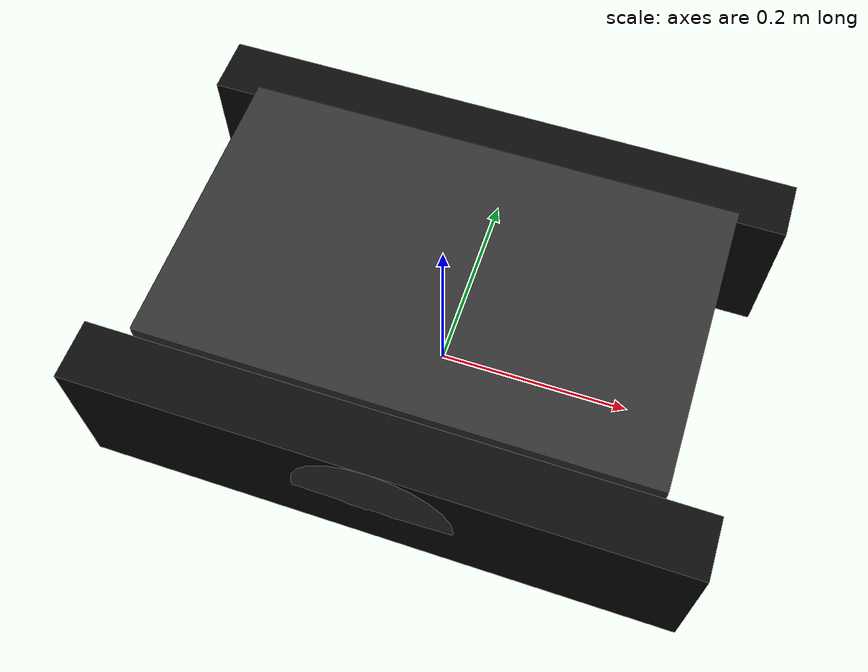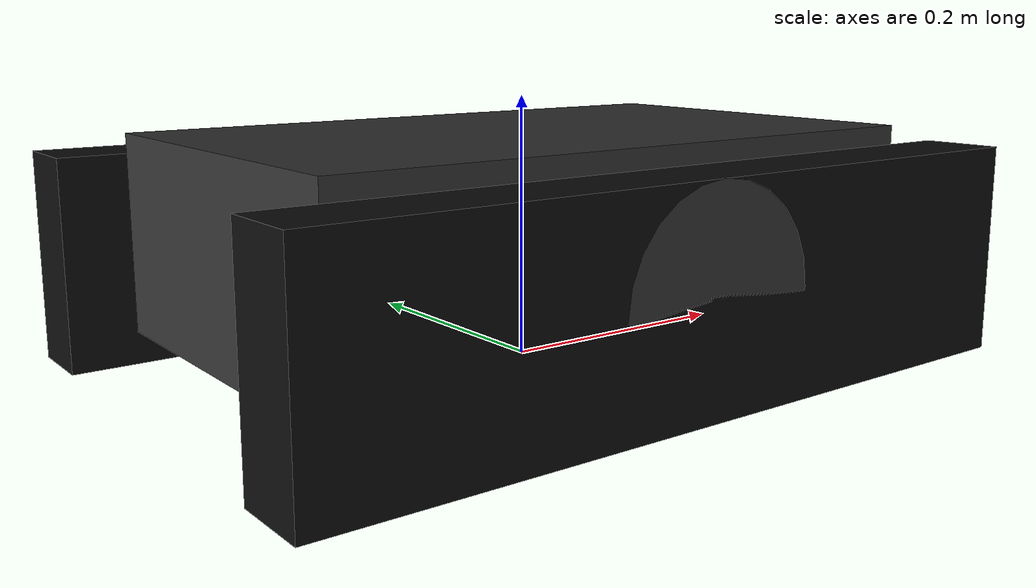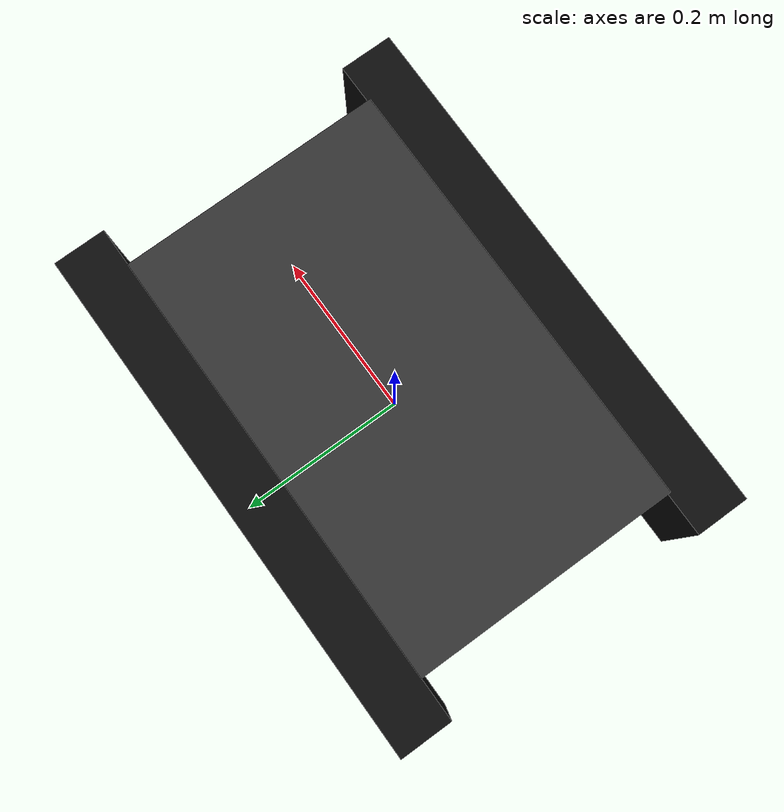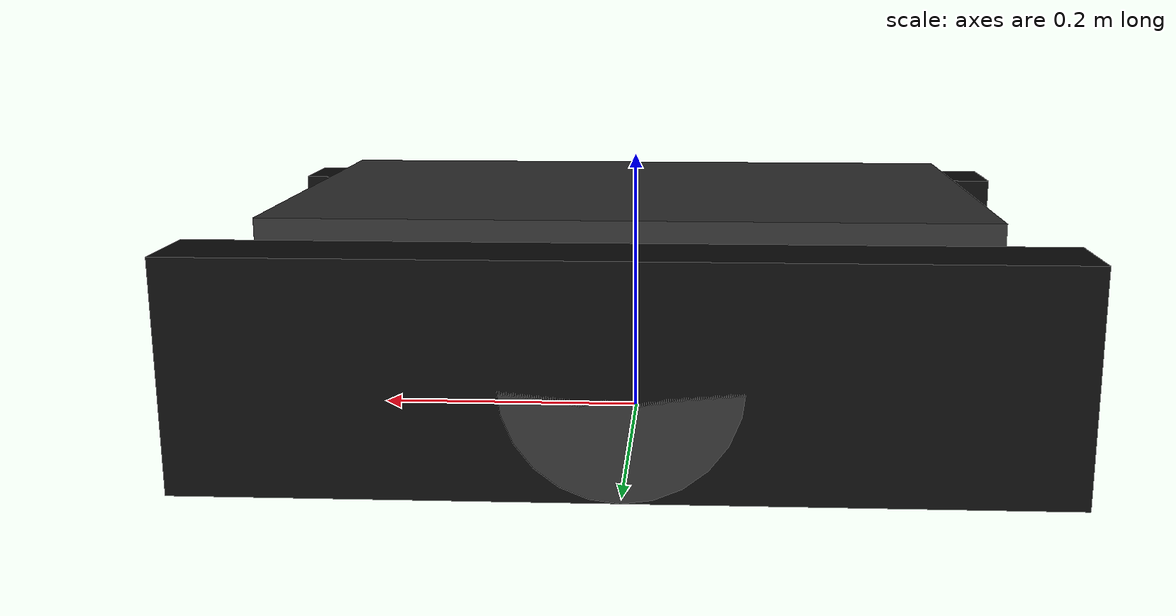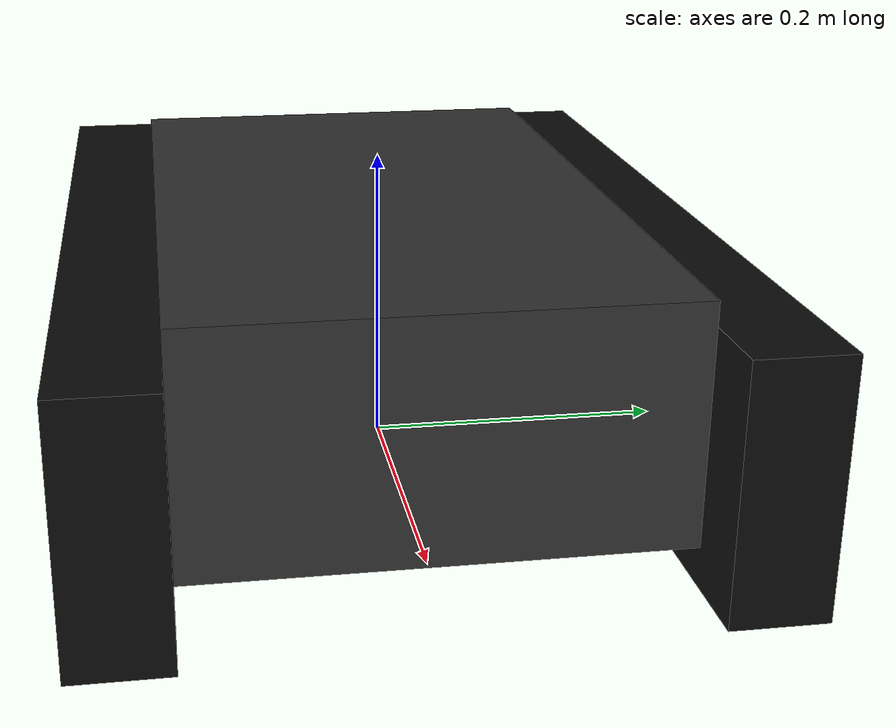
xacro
<?xml version="1.0"?>

<robot xmlns:xacro="[http://www.ros.org/wiki/xacro](http://www.ros.org/wiki/xacro)" name="lyrical_tracked_robot">

<!-- Materials -->

<material name="chassis_color">

<color rgba="0.2 0.2 0.2 1.0"/>

</material>

<material name="track_color">

<color rgba="0.05 0.05 0.05 1.0"/>

</material>

<!-- Dummy Base Link to prevent KDL errors -->

<link name="base_footprint"/>

<!-- Chassis Link -->

<link name="base_link">

<visual>

<origin xyz="0 0 0.1" rpy="0 0 0"/>

<geometry>

<!-- Standard box representation of the track chassis -->

<box size="0.5 0.3 0.15"/>

</geometry>

<material name="chassis_color"/>

</visual>

<collision>

<origin xyz="0 0 0.1" rpy="0 0 0"/>

<geometry>

<box size="0.5 0.3 0.15"/>

</geometry>

</collision>

<inertial>

<mass value="15.0"/>

<origin xyz="0 0 0.1" rpy="0 0 0"/>

<inertia ixx="0.14" ixy="0.0" ixz="0.0" iyy="0.34" iyz="0.0" izz="0.42"/>

</inertial>

</link>

<joint name="base_footprint_joint" type="fixed">

<parent link="base_footprint"/>

<child link="base_link"/>

<origin xyz="0 0 0" rpy="0 0 0"/>

</joint>

<!-- Track Macro for Left and Right Assembly -->

<!-- Note: ROS 2 Lyrical URDF 1.2 supports 'quat_xyzw' for orientation alongside rpy -->

<xacro:macro name="track_assembly" params="side reflect">

<!-- Visual representation of the track belt itself (Static to the base) -->

<link name="${side}_track_belt">

<visual>

<origin xyz="0 0 0.08" rpy="0 0 0"/>

<geometry>

<!-- Using standard box to visually frame the belt; replace with your mesh if needed -->

<box size="0.6 0.06 0.16"/>

</geometry>

<material name="track_color"/>

</visual>

<collision>

<origin xyz="0 0 0.08" rpy="0 0 0"/>

<geometry>

<box size="0.6 0.06 0.16"/>

</geometry>

</collision>

<inertial>

<mass value="2.0"/>

<inertia ixx="0.005" ixy="0.0" ixz="0.0" iyy="0.01" iyz="0.0" izz="0.01"/>

</inertial>

</link>

<joint name="${side}_track_joint" type="fixed">

<parent link="base_link"/>

<child link="${side}_track_belt"/>

<origin xyz="0 ${reflect * 0.18} 0" rpy="0 0 0"/>

</joint>

<!-- Drive Sprocket / Primary Wheel (Simulates Track Kinematics via diff-drive physics) -->

<link name="${side}_drive_wheel">

<visual>

<origin xyz="0 0 0" rpy="1.5708 0 0"/>

<geometry>

<cylinder radius="0.08" length="0.06"/>

</geometry>

<material name="chassis_color"/>

</visual>

<collision>

<origin xyz="0 0 0" rpy="1.5708 0 0"/>

<geometry>

<cylinder radius="0.08" length="0.06"/>

</geometry>

</collision>

<inertial>

<mass value="1.5"/>

<inertia ixx="0.0024" ixy="0.0" ixz="0.0" iyy="0.0024" iyz="0.0" izz="0.0048"/>

</inertial>

</link>

<!-- Continuous joint allows rotation for wheel/sprocket simulation -->

<joint name="${side}_drive_wheel_joint" type="continuous">

<parent link="${side}_track_belt"/>

<child link="${side}_drive_wheel"/>

<origin xyz="0 0 0.08" rpy="0 0 0"/>

<axis xyz="0 1 0"/>

</joint>

</xacro:macro>

<!-- Instantiate Left and Right Tracks -->

<xacro:track_assembly side="left" reflect="1"/>

<xacro:track_assembly side="right" reflect="-1"/>

<!-- Gazebo Differential Drive & Joint State Plugins -->
  <gazebo>
    <plugin filename="gz-sim-diff-drive-system" name="gz::sim::systems::DiffDrive">
      <left_joint>left_drive_wheel_joint</left_joint>
      <right_joint>right_drive_wheel_joint</right_joint>
      <wheel_separation>0.36</wheel_separation>
      <wheel_radius>0.08</wheel_radius>
      <max_linear_acceleration>1.0</max_linear_acceleration>
      <min_linear_acceleration>-1.0</min_linear_acceleration>
      <max_angular_acceleration>2.0</max_angular_acceleration>
      <min_angular_acceleration>-2.0</min_angular_acceleration>
      <topic>cmd_vel</topic>
      <odom_topic>odom</odom_topic>
      <tf_topic>tf</tf_topic>
      <frame_id>odom</frame_id>
      <child_frame_id>base_footprint</child_frame_id>
    </plugin>

    <plugin filename="gz-sim-joint-state-publisher-system" name="gz::sim::systems::JointStatePublisher">
      <topic>joint_states</topic>
    </plugin>
  </gazebo>

</robot>
